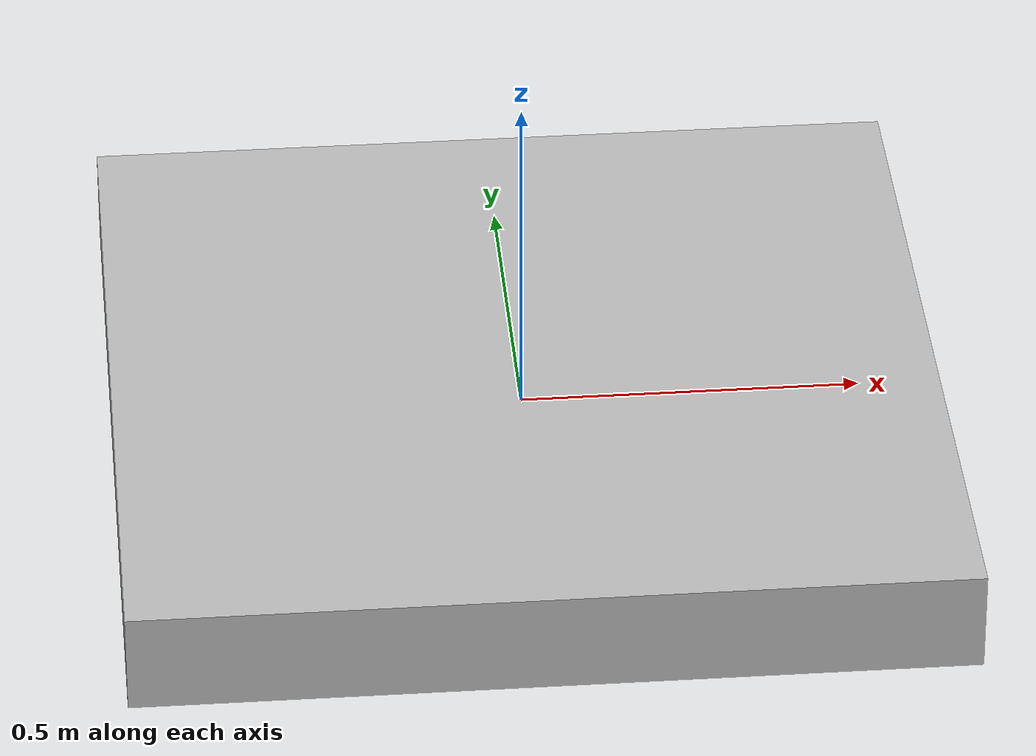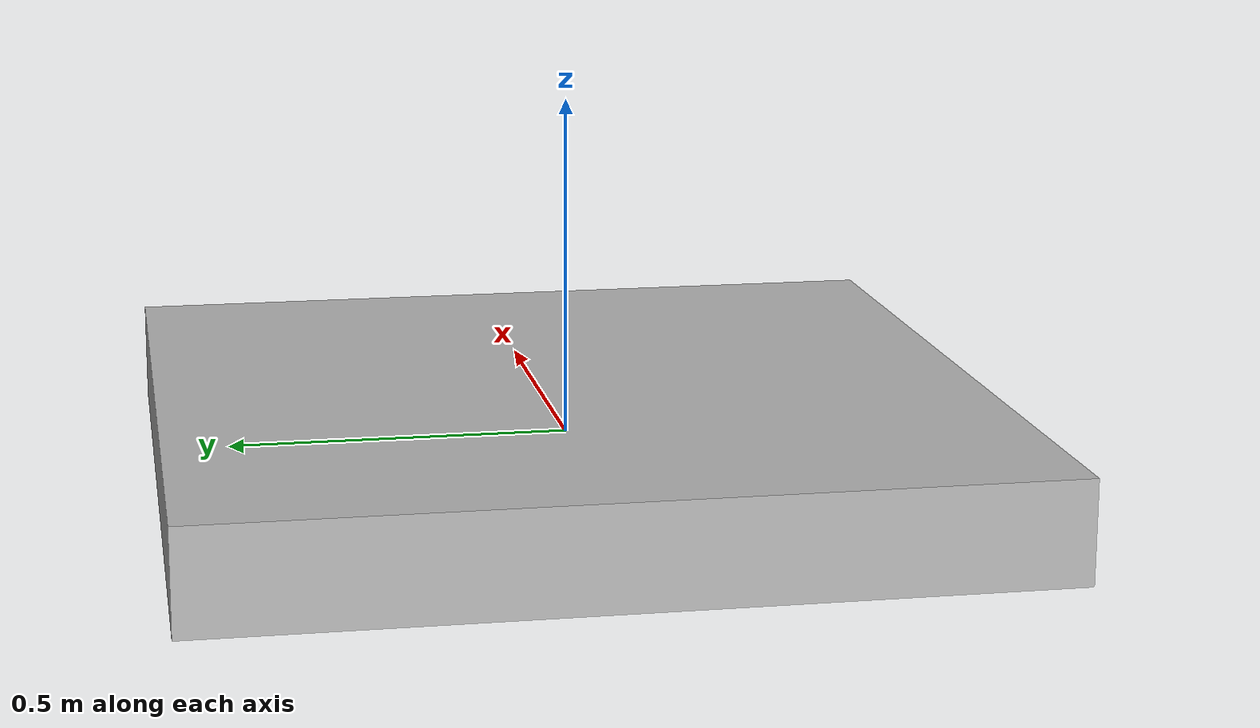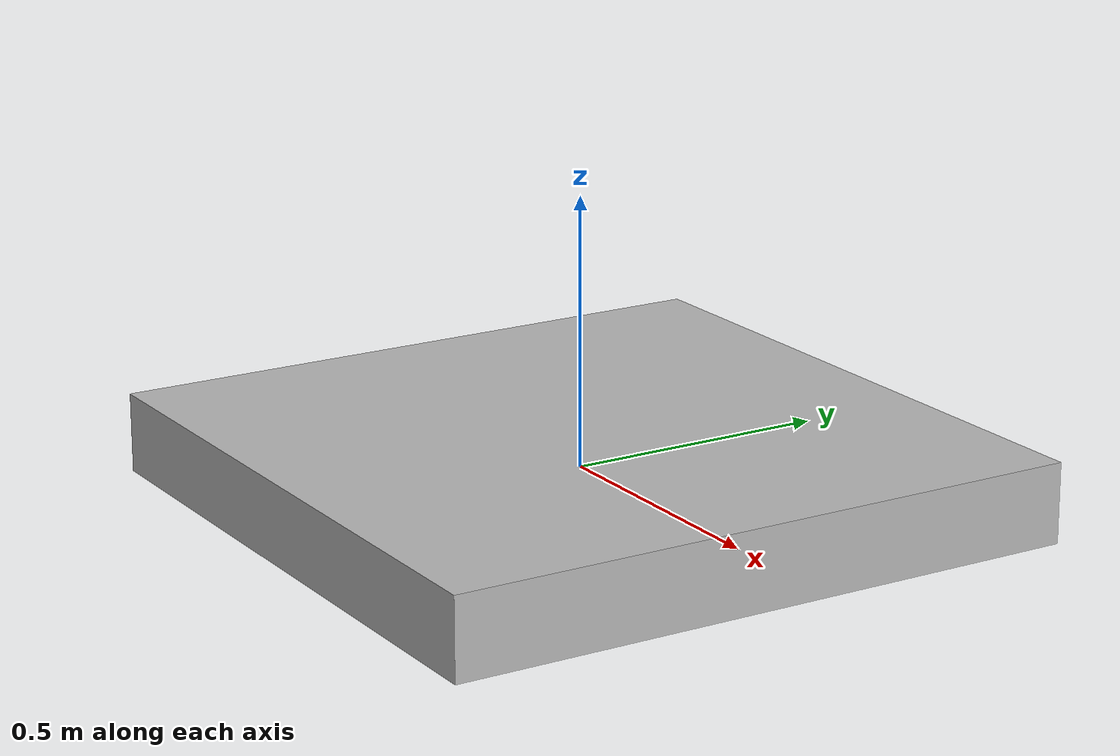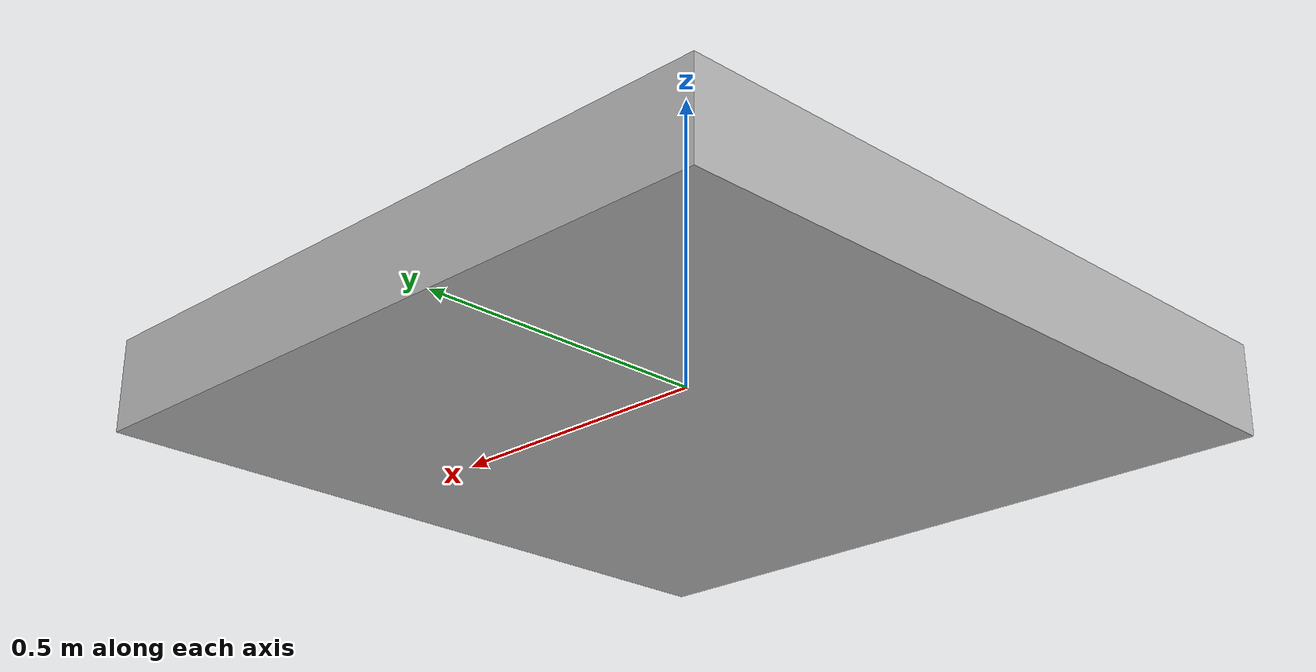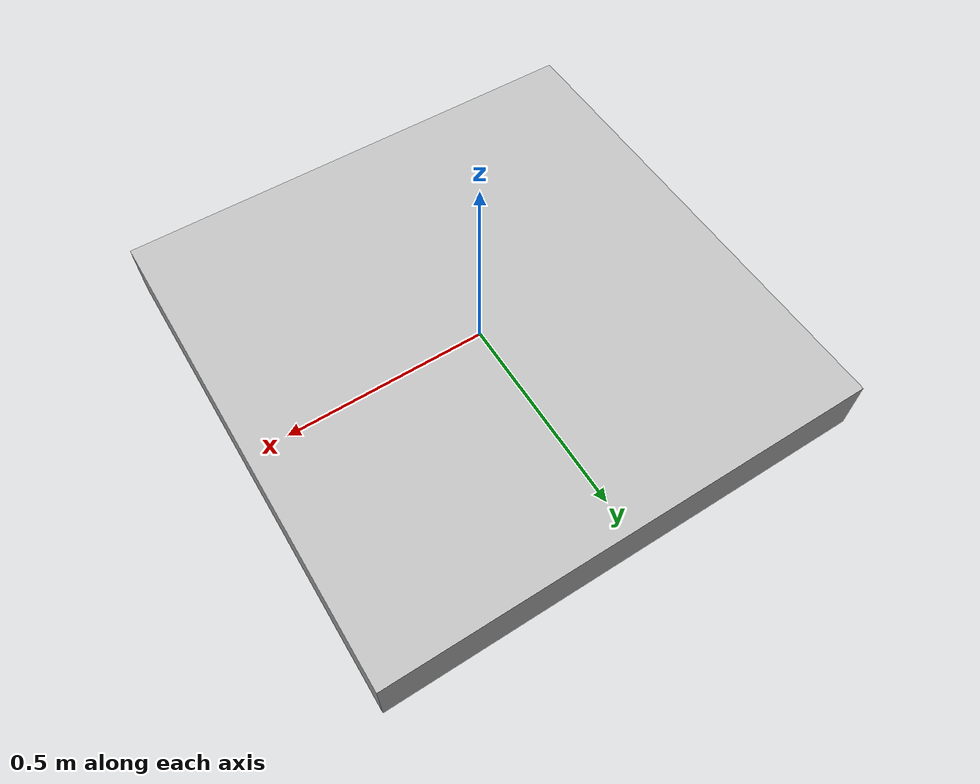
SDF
<?xml version="1.0" ?>
<sdf version="1.5">
  <model name="sidewalk">
    <static>true</static>
    <link name="link">
      <collision name="collision">
        <geometry>
          <box>
            <size>1.21 1.21 .15</size>
          </box>
        </geometry>
      </collision>
      <visual name="visual">
        <cast_shadows>false</cast_shadows>
        <geometry>
          <box>
            <size>1.21 1.21 .15</size>
          </box>
        </geometry>
        <material>
          <script>
            <uri>model://sidewalk/materials/scripts</uri>
            <uri>model://sidewalk/materials/textures</uri>
            <name>Sidewalk/Concrete</name>
          </script>
        </material>
      </visual>
    </link>
  </model>
</sdf>
